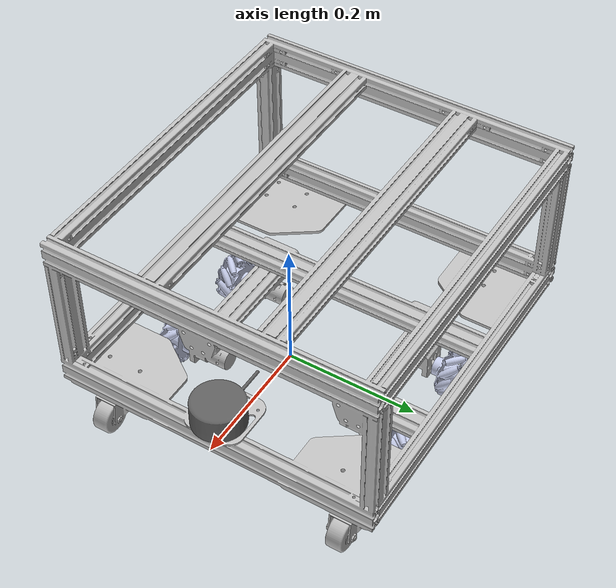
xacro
<?xml version="1.0" encoding="utf-8"?>
<robot name="chassis" xmlns:xacro="http://www.ros.org/wiki/xacro">

  <!-- ========== 仿真/实物切换参数 ========== -->

  <!-- 接收从 launch 传入的物理参数（需与 launch 中 xacro 参数名一致） -->
  <xacro:arg name="wheel_mu1" default="0.8"/>
  <xacro:arg name="wheel_mu2" default="0.6"/>
  <xacro:arg name="wheel_kp" default="100000.0"/>
  <xacro:arg name="wheel_kd" default="10.0"/>

  <xacro:arg name="use_sim" default="true"/>
  <xacro:property name="mecanum_config" value="$(find chassis)/config/robot_config.yaml" />

  <xacro:include filename="$(find chassis)/urdf/scan_sensor.xacro" />
  <xacro:include filename="$(find chassis)/urdf/mecanum.xacro" />

  <!-- 调用宏，传入物理参数 -->
  <xacro:mecanum_drive
      use_sim="$(arg use_sim)"
      config_path="$(find chassis)/config/robot_config.yaml"
      wheel_mu1="$(arg wheel_mu1)"
      wheel_mu2="$(arg wheel_mu2)"
      wheel_kp="$(arg wheel_kp)"
      wheel_kd="$(arg wheel_kd)"
  />

  <xacro:scan_sensor prefix="scan" use_sim="$(arg use_sim)"/>
  <xacro:mecanum_drive use_sim="$(arg use_sim)" config_path="${mecanum_config}"/>

  <link
    name="base_link">
    <inertial>
      <origin
        xyz="-0.0677499107745156 4.37244521654945E-05 0.068392625026961"
        rpy="0 0 0" />
      <mass
        value="3.22393142434326" />
      <inertia
        ixx="0.0187770652552215"
        ixy="-6.94990243935453E-08"
        ixz="-3.69534006071456E-08"
        iyy="0.0204839258293414"
        iyz="3.35294125226089E-11"
        izz="0.0375088689684911" />
    </inertial>
    <visual>
      <origin
        xyz="0 0 0"
        rpy="0 0 0" />
      <geometry>
        <mesh
          filename="package://chassis/meshes/base_link.STL" />
      </geometry>
      <material
        name="">
        <color
          rgba="0.752941176470588 0.752941176470588 0.752941176470588 1" />
      </material>
    </visual>
    <collision>
      <origin
        xyz="0 0 0"
        rpy="0 0 0" />
      <geometry>
        <mesh
          filename="package://chassis/meshes/base_link.STL" />
      </geometry>
    </collision>
  </link>
  <link
    name="FL_Link">
    <inertial>
      <origin
        xyz="-1.51557746422698E-05 -0.0177688130626312 3.72943823484378E-05"
        rpy="0 0 0" />
      <mass
        value="0.0570991876952128" />
      <inertia
        ixx="2.10306084770148E-05"
        ixy="-3.63266955109737E-09"
        ixz="-8.13885817974439E-09"
        iyy="3.39619809949368E-05"
        iyz="8.94029294404181E-09"
        izz="2.1041688188619E-05" />
    </inertial>
    <visual>
      <origin
        xyz="0 0 0"
        rpy="0 0 0" />
      <geometry>
        <mesh
          filename="package://chassis/meshes/FL_Link.STL" />
      </geometry>
      <material
        name="">
        <color
          rgba="0.792156862745098 0.819607843137255 0.933333333333333 1" />
      </material>
    </visual>
    <collision>
      <origin
        xyz="0 0 0"
        rpy="0 0 0" />
      <geometry>
        <mesh
          filename="package://chassis/meshes/FL_Link.STL" />
      </geometry>
    </collision>
  </link>
  <joint
    name="FL_Joint"
    type="continuous">
    <origin
      xyz="0.011984 0.207 -0.06187"
      rpy="0 0 0" />
    <parent
      link="base_link" />
    <child
      link="FL_Link" />
    <axis
      xyz="0 -1 0" />
  </joint>
  <link
    name="FR_Link">
    <inertial>
      <origin
        xyz="3.73138131217893E-05 0.0177656337718318 -1.51714675786438E-05"
        rpy="0 0 0" />
      <mass
        value="0.0570982559843118" />
      <inertia
        ixx="2.10412305440831E-05"
        ixy="-8.94174558072254E-09"
        ixz="-8.14257477486789E-09"
        iyy="3.39612560042682E-05"
        iyz="3.63772364271833E-09"
        izz="2.10301739676632E-05" />
    </inertial>
    <visual>
      <origin
        xyz="0 0 0"
        rpy="0 0 0" />
      <geometry>
        <mesh
          filename="package://chassis/meshes/FR_Link.STL" />
      </geometry>
      <material
        name="">
        <color
          rgba="0.792156862745098 0.819607843137255 0.933333333333333 1" />
      </material>
    </visual>
    <collision>
      <origin
        xyz="0 0 0"
        rpy="0 0 0" />
      <geometry>
        <mesh
          filename="package://chassis/meshes/FR_Link.STL" />
      </geometry>
    </collision>
  </link>
  <joint
    name="FR_Joint"
    type="continuous">
    <origin
      xyz="0.011984 -0.206 -0.06187"
      rpy="0 0 0" />
    <parent
      link="base_link" />
    <child
      link="FR_Link" />
    <axis
      xyz="0 1 0" />
  </joint>
  <link
    name="BL_Link">
    <inertial>
      <origin
        xyz="3.7313813121137E-05 -0.0177656337718317 1.51714675792752E-05"
        rpy="0 0 0" />
      <mass
        value="0.0570982559843118" />
      <inertia
        ixx="2.10412305440832E-05"
        ixy="8.94174558053171E-09"
        ixz="8.14257477489918E-09"
        iyy="3.39612560042682E-05"
        iyz="3.63772364284194E-09"
        izz="2.10301739676631E-05" />
    </inertial>
    <visual>
      <origin
        xyz="0 0 0"
        rpy="0 0 0" />
      <geometry>
        <mesh
          filename="package://chassis/meshes/BL_Link.STL" />
      </geometry>
      <material
        name="">
        <color
          rgba="0.792156862745098 0.819607843137255 0.933333333333333 1" />
      </material>
    </visual>
    <collision>
      <origin
        xyz="0 0 0"
        rpy="0 0 0" />
      <geometry>
        <mesh
          filename="package://chassis/meshes/BL_Link.STL" />
      </geometry>
    </collision>
  </link>
  <joint
    name="BL_Joint"
    type="continuous">
    <origin
      xyz="-0.14302 0.206 -0.06187"
      rpy="0 0 0" />
    <parent
      link="base_link" />
    <child
      link="BL_Link" />
    <axis
      xyz="0 -1 0" />
  </joint>
  <link
    name="BR_Link">
    <inertial>
      <origin
        xyz="1.51557746424433E-05 0.017768813062631 3.72943823481672E-05"
        rpy="0 0 0" />
      <mass
        value="0.0570991876952133" />
      <inertia
        ixx="2.10306084770149E-05"
        ixy="-3.63266955067876E-09"
        ixz="8.13885817975177E-09"
        iyy="3.3961980994937E-05"
        iyz="-8.9402929444889E-09"
        izz="2.10416881886191E-05" />
    </inertial>
    <visual>
      <origin
        xyz="0 0 0"
        rpy="0 0 0" />
      <geometry>
        <mesh
          filename="package://chassis/meshes/BR_Link.STL" />
      </geometry>
      <material
        name="">
        <color
          rgba="0.792156862745098 0.819607843137255 0.933333333333333 1" />
      </material>
    </visual>
    <collision>
      <origin
        xyz="0 0 0"
        rpy="0 0 0" />
      <geometry>
        <mesh
          filename="package://chassis/meshes/BR_Link.STL" />
      </geometry>
    </collision>
  </link>
  <joint
    name="BR_Joint"
    type="continuous">
    <origin
      xyz="-0.14302 -0.207 -0.06187"
      rpy="0 0 0" />
    <parent
      link="base_link" />
    <child
      link="BR_Link" />
    <axis
      xyz="0 1 0" />
  </joint>
</robot>

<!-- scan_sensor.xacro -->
<robot xmlns:xacro="http://www.ros.org/wiki/xacro">

  <xacro:macro name="scan_sensor" params="prefix use_sim:=true">

    <!-- 连杆定义（保持不变） -->
    <link name="${prefix}_Link">
      <inertial>
        <origin xyz="-0.00250631530381207 4.56584853758546E-06 0.00608264669062357" rpy="0 0 0"/>
        <mass value="0.0374307357500632"/>
        <inertia ixx="2.80476493090254E-05" ixy="-2.19899695277469E-09" ixz="-1.07121854785562E-06"
                 iyy="3.36164872297249E-05" iyz="-6.8396885171025E-10" izz="4.50845442757731E-05"/>
      </inertial>
      <visual>
        <origin xyz="0 0 0" rpy="0 0 0"/>
        <geometry>
          <mesh filename="package://chassis/meshes/scan_Link.STL"/>
        </geometry>
        <material name="">
          <color rgba="0.376470588235294 0.376470588235294 0.376470588235294 1"/>
        </material>
      </visual>
      <collision>
        <origin xyz="0 0 0" rpy="0 0 0"/>
        <geometry>
          <mesh filename="package://chassis/meshes/scan_Link.STL"/>
        </geometry>
      </collision>
    </link>

    <joint name="${prefix}_Joint" type="fixed">
      <origin xyz="0.177 0 0.050075" rpy="0 0 0"/>
      <parent link="base_link"/>
      <child link="${prefix}_Link"/>
      <axis xyz="0 0 0"/>
    </joint>

    <!-- 仿真专用：Gazebo 雷达插件 -->
    <xacro:if value="${use_sim}">
      <gazebo reference="${prefix}_Link">
        <sensor name="laserscan" type="ray">   <!-- 若仍无扫描线，可保留 gpu_ray，但 ray 更通用 -->
          <always_on>true</always_on>
          <visualize>true</visualize>
          <update_rate>10</update_rate>
          <pose>0 0 0 0 0 0</pose>
          <ray>
            <scan>
              <horizontal>
                <samples>360</samples>
                <resolution>1.0</resolution>
                <min_angle>0.0</min_angle>
                <max_angle>6.28318</max_angle>
              </horizontal>
            </scan>
            <range>
              <min>0.12</min>
              <max>8.0</max>
              <resolution>0.015</resolution>
            </range>
            <noise>
              <type>gaussian</type>
              <mean>0.0</mean>
              <stddev>0.01</stddev>
            </noise>
          </ray>
          <plugin name="laserscan" filename="libgazebo_ros_ray_sensor.so">
            <topic>scan</topic>
            <frame_name>${prefix}_Link</frame_name>
            <output_type>sensor_msgs/LaserScan</output_type>
          </plugin>
        </sensor>
      </gazebo>
    </xacro:if>

  </xacro:macro>

</robot>
